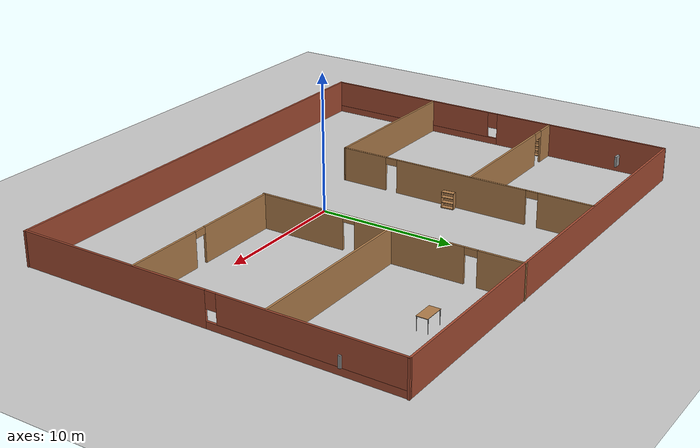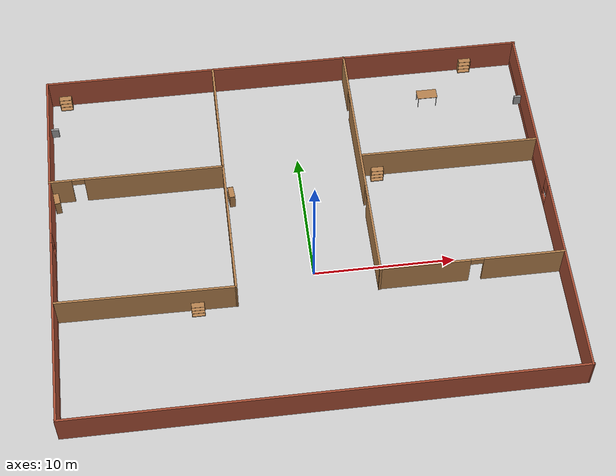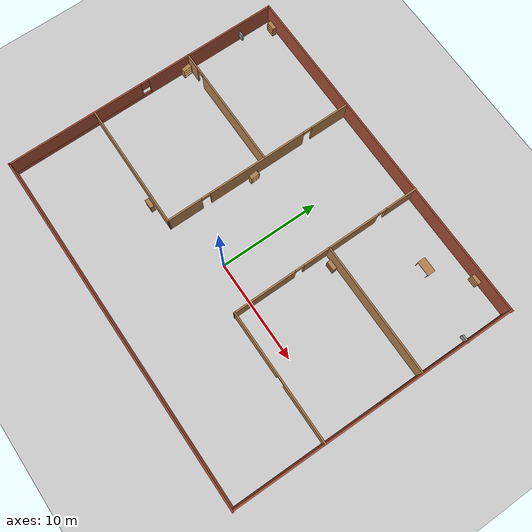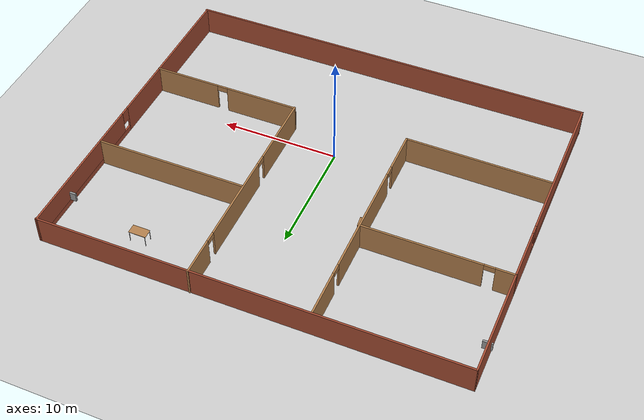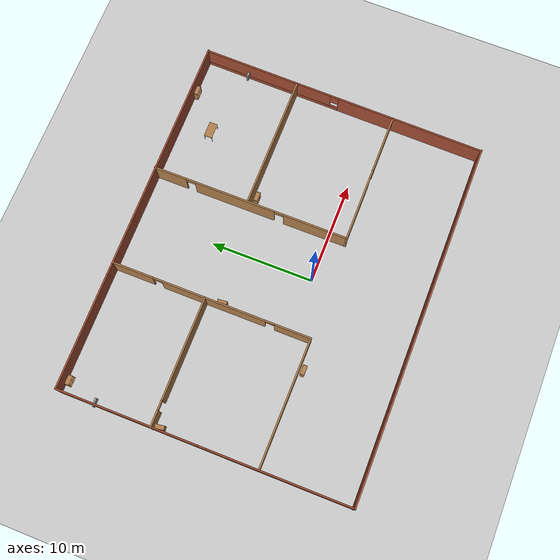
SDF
<sdf version="1.7">
 <world name="default">
  <light name="sun" type="directional">
   <pose>0 0 10 0 -0 0</pose>
   <diffuse>0.8 0.8 0.8 1</diffuse>
   <specular>0.2 0.2 0.2 1</specular>
   <attenuation>
    <range>1000</range>
    <constant>0.9</constant>
    <linear>0.01</linear>
    <quadratic>0.001</quadratic>
   </attenuation>
   <direction>-0.5 0.1 -0.9</direction>
   <spot><inner_angle>0</inner_angle><outer_angle>0</outer_angle><falloff>0</falloff></spot>
  </light>
  <model name="ground_plane">
   <static>1</static>
   <link name="link">
    <collision name="collision">
     <geometry><plane><normal>0 0 1</normal><size>100 100</size></plane></geometry>
     <surface><friction><ode><mu>100</mu><mu2>50</mu2></ode></friction></surface>
    </collision>
    <visual name="visual">
     <cast_shadows>0</cast_shadows>
     <geometry><plane><normal>0 0 1</normal><size>100 100</size></plane></geometry>
     <material>
      <script><uri>file://media/materials/scripts/gazebo.material</uri><name>Gazebo/Grey</name></script>
     </material>
    </visual>
   </link>
  </model>
  <gravity>0 0 -9.8</gravity>
  <magnetic_field>6e-06 2.3e-05 -4.2e-05</magnetic_field>
  <atmosphere type="adiabatic"/>
  <physics type="ode">
   <max_step_size>0.001</max_step_size>
   <real_time_factor>1</real_time_factor>
   <real_time_update_rate>1000</real_time_update_rate>
  </physics>
  <scene><ambient>0.4 0.4 0.4 1</ambient><background>0.7 0.7 0.7 1</background><shadows>1</shadows></scene>
  <audio><device>default</device></audio>
  <spherical_coordinates>
   <surface_model>EARTH_WGS84</surface_model>
   <latitude_deg>0</latitude_deg>
   <longitude_deg>0</longitude_deg>
   <elevation>0</elevation>
   <heading_deg>0</heading_deg>
  </spherical_coordinates>
  <model name="my_model">
   <pose>-0.243264 3.40238 0 0 -0 0</pose>
   <link name="Wall_11">
    <pose>11.0517 -5.12431 0 0 -0 0</pose>
    <visual name="Wall_11_Visual_0">
     <pose>-3.32425 0 1.25 0 -0 0</pose>
     <geometry><box><size>6.35149 0.15 2.5</size></box></geometry>
     <material>
      <script><uri>file://media/materials/scripts/gazebo.material</uri><name>Gazebo/Wood</name></script>
      <ambient>1 1 1 1</ambient>
     </material>
     <meta><layer>0</layer></meta>
    </visual>
    <collision name="Wall_11_Collision_0">
     <geometry><box><size>6.35149 0.15 2.5</size></box></geometry>
     <pose>-3.32425 0 1.25 0 -0 0</pose>
    </collision>
    <visual name="Wall_11_Visual_1">
     <pose>3.62575 0 1.25 0 -0 0</pose>
     <geometry><box><size>5.74851 0.15 2.5</size></box></geometry>
     <material>
      <script><uri>file://media/materials/scripts/gazebo.material</uri><name>Gazebo/Wood</name></script>
      <ambient>1 1 1 1</ambient>
     </material>
     <meta><layer>0</layer></meta>
    </visual>
    <collision name="Wall_11_Collision_1">
     <geometry><box><size>5.74851 0.15 2.5</size></box></geometry>
     <pose>3.62575 0 1.25 0 -0 0</pose>
    </collision>
    <visual name="Wall_11_Visual_2">
     <pose>0.301491 0 2.25 0 -0 0</pose>
     <geometry><box><size>0.9 0.15 0.5</size></box></geometry>
     <material>
      <script><uri>file://media/materials/scripts/gazebo.material</uri><name>Gazebo/Wood</name></script>
      <ambient>1 1 1 1</ambient>
     </material>
     <meta><layer>0</layer></meta>
    </visual>
    <collision name="Wall_11_Collision_2">
     <geometry><box><size>0.9 0.15 0.5</size></box></geometry>
     <pose>0.301491 0 2.25 0 -0 0</pose>
    </collision>
   </link>
   <link name="Wall_14">
    <pose>4.62669 4.46996 0 0 -0 1.5708</pose>
    <visual name="Wall_14_Visual_0">
     <pose>-6.53142 0 1.25 0 -0 0</pose>
     <geometry><box><size>6.3827 0.15 2.5</size></box></geometry>
     <material>
      <script><uri>file://media/materials/scripts/gazebo.material</uri><name>Gazebo/Wood</name></script>
      <ambient>1 1 1 1</ambient>
     </material>
     <meta><layer>0</layer></meta>
    </visual>
    <collision name="Wall_14_Collision_0">
     <geometry><box><size>6.3827 0.15 2.5</size></box></geometry>
     <pose>-6.53142 0 1.25 0 -0 0</pose>
    </collision>
    <visual name="Wall_14_Visual_1">
     <pose>1.55064 0 1.25 0 -0 0</pose>
     <geometry><box><size>7.98142 0.15 2.5</size></box></geometry>
     <material>
      <script><uri>file://media/materials/scripts/gazebo.material</uri><name>Gazebo/Wood</name></script>
      <ambient>1 1 1 1</ambient>
     </material>
     <meta><layer>0</layer></meta>
    </visual>
    <collision name="Wall_14_Collision_1">
     <geometry><box><size>7.98142 0.15 2.5</size></box></geometry>
     <pose>1.55064 0 1.25 0 -0 0</pose>
    </collision>
    <visual name="Wall_14_Visual_2">
     <pose>8.08206 0 1.25 0 -0 0</pose>
     <geometry><box><size>3.28142 0.15 2.5</size></box></geometry>
     <material>
      <script><uri>file://media/materials/scripts/gazebo.material</uri><name>Gazebo/Wood</name></script>
      <ambient>1 1 1 1</ambient>
     </material>
     <meta><layer>0</layer></meta>
    </visual>
    <collision name="Wall_14_Collision_2">
     <geometry><box><size>3.28142 0.15 2.5</size></box></geometry>
     <pose>8.08206 0 1.25 0 -0 0</pose>
    </collision>
    <visual name="Wall_14_Visual_3">
     <pose>-2.89007 0 2.25 0 -0 0</pose>
     <geometry><box><size>0.9 0.15 0.5</size></box></geometry>
     <material>
      <script><uri>file://media/materials/scripts/gazebo.material</uri><name>Gazebo/Wood</name></script>
      <ambient>1 1 1 1</ambient>
     </material>
     <meta><layer>0</layer></meta>
    </visual>
    <collision name="Wall_14_Collision_3">
     <geometry><box><size>0.9 0.15 0.5</size></box></geometry>
     <pose>-2.89007 0 2.25 0 -0 0</pose>
    </collision>
    <visual name="Wall_14_Visual_4">
     <pose>5.99134 0 2.25 0 -0 0</pose>
     <geometry><box><size>0.9 0.15 0.5</size></box></geometry>
     <material>
      <script><uri>file://media/materials/scripts/gazebo.material</uri><name>Gazebo/Wood</name></script>
      <ambient>1 1 1 1</ambient>
     </material>
     <meta><layer>0</layer></meta>
    </visual>
    <collision name="Wall_14_Collision_4">
     <geometry><box><size>0.9 0.15 0.5</size></box></geometry>
     <pose>5.99134 0 2.25 0 -0 0</pose>
    </collision>
   </link>
   <link name="Wall_16">
    <pose>-11.5772 4.89704 0 0 -0 0</pose>
    <visual name="Wall_16_Visual_0">
     <pose>-5.42095 0 1.25 0 -0 0</pose>
     <geometry><box><size>1.6581 0.15 2.5</size></box></geometry>
     <material>
      <script><uri>file://media/materials/scripts/gazebo.material</uri><name>Gazebo/Wood</name></script>
      <ambient>1 1 1 1</ambient>
     </material>
     <meta><layer>0</layer></meta>
    </visual>
    <collision name="Wall_16_Collision_0">
     <geometry><box><size>1.6581 0.15 2.5</size></box></geometry>
     <pose>-5.42095 0 1.25 0 -0 0</pose>
    </collision>
    <visual name="Wall_16_Visual_1">
     <pose>1.27905 0 1.25 0 -0 0</pose>
     <geometry><box><size>9.94191 0.15 2.5</size></box></geometry>
     <material>
      <script><uri>file://media/materials/scripts/gazebo.material</uri><name>Gazebo/Wood</name></script>
      <ambient>1 1 1 1</ambient>
     </material>
     <meta><layer>0</layer></meta>
    </visual>
    <collision name="Wall_16_Collision_1">
     <geometry><box><size>9.94191 0.15 2.5</size></box></geometry>
     <pose>1.27905 0 1.25 0 -0 0</pose>
    </collision>
    <visual name="Wall_16_Visual_2">
     <pose>-4.14191 0 2.25 0 -0 0</pose>
     <geometry><box><size>0.9 0.15 0.5</size></box></geometry>
     <material>
      <script><uri>file://media/materials/scripts/gazebo.material</uri><name>Gazebo/Wood</name></script>
      <ambient>1 1 1 1</ambient>
     </material>
     <meta><layer>0</layer></meta>
    </visual>
    <collision name="Wall_16_Collision_2">
     <geometry><box><size>0.9 0.15 0.5</size></box></geometry>
     <pose>-4.14191 0 2.25 0 -0 0</pose>
    </collision>
   </link>
   <link name="Wall_18">
    <collision name="Wall_18_Collision">
     <geometry><box><size>13 0.15 2.5</size></box></geometry>
     <pose>0 0 1.25 0 -0 0</pose>
    </collision>
    <visual name="Wall_18_Visual">
     <pose>0 0 1.25 0 -0 0</pose>
     <geometry><box><size>13 0.15 2.5</size></box></geometry>
     <material>
      <script><uri>file://media/materials/scripts/gazebo.material</uri><name>Gazebo/Wood</name></script>
      <ambient>1 1 1 1</ambient>
     </material>
     <meta><layer>0</layer></meta>
    </visual>
    <pose>11.0904 4.73653 0 0 -0 0</pose>
   </link>
   <link name="Wall_2">
    <collision name="Wall_2_Collision">
     <geometry><box><size>35.3453 0.15 2.5</size></box></geometry>
     <pose>0 0 1.25 0 -0 0</pose>
    </collision>
    <visual name="Wall_2_Visual">
     <pose>0 0 1.25 0 -0 0</pose>
     <geometry><box><size>35.3453 0.15 2.5</size></box></geometry>
     <material>
      <script><uri>file://media/materials/scripts/gazebo.material</uri><name>Gazebo/Bricks</name></script>
      <ambient>1 1 1 1</ambient>
     </material>
     <meta><layer>0</layer></meta>
    </visual>
    <pose>-0.160507 -14.0909 0 0 -0 0.00152</pose>
   </link>
   <link name="Wall_3">
    <pose>17.5441 0.012643 0 0 -0 1.55939</pose>
    <visual name="Wall_3_Visual_0">
     <pose>-6.86656 0 1.25 0 -0 0</pose>
     <geometry><box><size>14.5722 0.15 2.5</size></box></geometry>
     <material>
      <script><uri>file://media/materials/scripts/gazebo.material</uri><name>Gazebo/Bricks</name></script>
      <ambient>1 1 1 1</ambient>
     </material>
     <meta><layer>0</layer></meta>
    </visual>
    <collision name="Wall_3_Collision_0">
     <geometry><box><size>14.5722 0.15 2.5</size></box></geometry>
     <pose>-6.86656 0 1.25 0 -0 0</pose>
    </collision>
    <visual name="Wall_3_Visual_1">
     <pose>7.28611 0 0.25 0 -0 0</pose>
     <geometry><box><size>13.7331 0.15 0.5</size></box></geometry>
     <material>
      <script><uri>file://media/materials/scripts/gazebo.material</uri><name>Gazebo/Bricks</name></script>
      <ambient>1 1 1 1</ambient>
     </material>
     <meta><layer>0</layer></meta>
    </visual>
    <collision name="Wall_3_Collision_1">
     <geometry><box><size>13.7331 0.15 0.5</size></box></geometry>
     <pose>7.28611 0 0.25 0 -0 0</pose>
    </collision>
    <visual name="Wall_3_Visual_2">
     <pose>7.68611 0 1.5 0 -0 0</pose>
     <geometry><box><size>12.9331 0.15 2</size></box></geometry>
     <material>
      <script><uri>file://media/materials/scripts/gazebo.material</uri><name>Gazebo/Bricks</name></script>
      <ambient>1 1 1 1</ambient>
     </material>
     <meta><layer>0</layer></meta>
    </visual>
    <collision name="Wall_3_Collision_2">
     <geometry><box><size>12.9331 0.15 2</size></box></geometry>
     <pose>7.68611 0 1.5 0 -0 0</pose>
    </collision>
    <visual name="Wall_3_Visual_3">
     <pose>0.81955 0 1.9 0 -0 0</pose>
     <geometry><box><size>0.8 0.15 1.2</size></box></geometry>
     <material>
      <script><uri>file://media/materials/scripts/gazebo.material</uri><name>Gazebo/Bricks</name></script>
      <ambient>1 1 1 1</ambient>
     </material>
     <meta><layer>0</layer></meta>
    </visual>
    <collision name="Wall_3_Collision_3">
     <geometry><box><size>0.8 0.15 1.2</size></box></geometry>
     <pose>0.81955 0 1.9 0 -0 0</pose>
    </collision>
   </link>
   <link name="Wall_4">
    <collision name="Wall_4_Collision">
     <geometry><box><size>35.6488 0.15 2.5</size></box></geometry>
     <pose>0 0 1.25 0 -0 0</pose>
    </collision>
    <visual name="Wall_4_Visual">
     <pose>0 0 1.25 0 -0 0</pose>
     <geometry><box><size>35.6488 0.15 2.5</size></box></geometry>
     <material>
      <script><uri>file://media/materials/scripts/gazebo.material</uri><name>Gazebo/Bricks</name></script>
      <ambient>1 1 1 1</ambient>
     </material>
     <meta><layer>0</layer></meta>
    </visual>
    <pose>0.008757 14.0626 0 0 -0 -3.14009</pose>
   </link>
   <link name="Wall_5">
    <pose>-17.7406 -0.014108 0 0 -0 -1.5708</pose>
    <visual name="Wall_5_Visual_0">
     <pose>-7.31046 0 1.25 0 -0 0</pose>
     <geometry><box><size>13.6291 0.15 2.5</size></box></geometry>
     <material>
      <script><uri>file://media/materials/scripts/gazebo.material</uri><name>Gazebo/Bricks</name></script>
      <ambient>1 1 1 1</ambient>
     </material>
     <meta><layer>0</layer></meta>
    </visual>
    <collision name="Wall_5_Collision_0">
     <geometry><box><size>13.6291 0.15 2.5</size></box></geometry>
     <pose>-7.31046 0 1.25 0 -0 0</pose>
    </collision>
    <visual name="Wall_5_Visual_1">
     <pose>6.81454 0 0.25 0 -0 0</pose>
     <geometry><box><size>14.6209 0.15 0.5</size></box></geometry>
     <material>
      <script><uri>file://media/materials/scripts/gazebo.material</uri><name>Gazebo/Bricks</name></script>
      <ambient>1 1 1 1</ambient>
     </material>
     <meta><layer>0</layer></meta>
    </visual>
    <collision name="Wall_5_Collision_1">
     <geometry><box><size>14.6209 0.15 0.5</size></box></geometry>
     <pose>6.81454 0 0.25 0 -0 0</pose>
    </collision>
    <visual name="Wall_5_Visual_2">
     <pose>7.21454 0 1.5 0 -0 0</pose>
     <geometry><box><size>13.8209 0.15 2</size></box></geometry>
     <material>
      <script><uri>file://media/materials/scripts/gazebo.material</uri><name>Gazebo/Bricks</name></script>
      <ambient>1 1 1 1</ambient>
     </material>
     <meta><layer>0</layer></meta>
    </visual>
    <collision name="Wall_5_Collision_2">
     <geometry><box><size>13.8209 0.15 2</size></box></geometry>
     <pose>7.21454 0 1.5 0 -0 0</pose>
    </collision>
    <visual name="Wall_5_Visual_3">
     <pose>-0.095924 0 1.9 0 -0 0</pose>
     <geometry><box><size>0.8 0.15 1.2</size></box></geometry>
     <material>
      <script><uri>file://media/materials/scripts/gazebo.material</uri><name>Gazebo/Bricks</name></script>
      <ambient>1 1 1 1</ambient>
     </material>
     <meta><layer>0</layer></meta>
    </visual>
    <collision name="Wall_5_Collision_3">
     <geometry><box><size>0.8 0.15 1.2</size></box></geometry>
     <pose>-0.095924 0 1.9 0 -0 0</pose>
    </collision>
   </link>
   <link name="Wall_7">
    <pose>-5.32478 4.30109 0 0 -0 -1.5708</pose>
    <visual name="Wall_7_Visual_0">
     <pose>-7.75209 0 1.25 0 -0 0</pose>
     <geometry><box><size>3.99582 0.15 2.5</size></box></geometry>
     <material>
      <script><uri>file://media/materials/scripts/gazebo.material</uri><name>Gazebo/Wood</name></script>
      <ambient>1 1 1 1</ambient>
     </material>
     <meta><layer>0</layer></meta>
    </visual>
    <collision name="Wall_7_Collision_0">
     <geometry><box><size>3.99582 0.15 2.5</size></box></geometry>
     <pose>-7.75209 0 1.25 0 -0 0</pose>
    </collision>
    <visual name="Wall_7_Visual_1">
     <pose>0.206583 0 1.25 0 -0 0</pose>
     <geometry><box><size>10.1215 0.15 2.5</size></box></geometry>
     <material>
      <script><uri>file://media/materials/scripts/gazebo.material</uri><name>Gazebo/Wood</name></script>
      <ambient>1 1 1 1</ambient>
     </material>
     <meta><layer>0</layer></meta>
    </visual>
    <collision name="Wall_7_Collision_1">
     <geometry><box><size>10.1215 0.15 2.5</size></box></geometry>
     <pose>0.206583 0 1.25 0 -0 0</pose>
    </collision>
    <visual name="Wall_7_Visual_2">
     <pose>7.95867 0 1.25 0 -0 0</pose>
     <geometry><box><size>3.58266 0.15 2.5</size></box></geometry>
     <material>
      <script><uri>file://media/materials/scripts/gazebo.material</uri><name>Gazebo/Wood</name></script>
      <ambient>1 1 1 1</ambient>
     </material>
     <meta><layer>0</layer></meta>
    </visual>
    <collision name="Wall_7_Collision_2">
     <geometry><box><size>3.58266 0.15 2.5</size></box></geometry>
     <pose>7.95867 0 1.25 0 -0 0</pose>
    </collision>
    <visual name="Wall_7_Visual_3">
     <pose>-5.30417 0 2.25 0 -0 0</pose>
     <geometry><box><size>0.9 0.15 0.5</size></box></geometry>
     <material>
      <script><uri>file://media/materials/scripts/gazebo.material</uri><name>Gazebo/Wood</name></script>
      <ambient>1 1 1 1</ambient>
     </material>
     <meta><layer>0</layer></meta>
    </visual>
    <collision name="Wall_7_Collision_3">
     <geometry><box><size>0.9 0.15 0.5</size></box></geometry>
     <pose>-5.30417 0 2.25 0 -0 0</pose>
    </collision>
    <visual name="Wall_7_Visual_4">
     <pose>5.71734 0 2.25 0 -0 0</pose>
     <geometry><box><size>0.9 0.15 0.5</size></box></geometry>
     <material>
      <script><uri>file://media/materials/scripts/gazebo.material</uri><name>Gazebo/Wood</name></script>
      <ambient>1 1 1 1</ambient>
     </material>
     <meta><layer>0</layer></meta>
    </visual>
    <collision name="Wall_7_Collision_4">
     <geometry><box><size>0.9 0.15 0.5</size></box></geometry>
     <pose>5.71734 0 2.25 0 -0 0</pose>
    </collision>
   </link>
   <link name="Wall_8">
    <collision name="Wall_8_Collision">
     <geometry><box><size>12.447 0.15 2.5</size></box></geometry>
     <pose>0 0 1.25 0 -0 0</pose>
    </collision>
    <visual name="Wall_8_Visual">
     <pose>0 0 1.25 0 -0 0</pose>
     <geometry><box><size>12.447 0.15 2.5</size></box></geometry>
     <material>
      <script><uri>file://media/materials/scripts/gazebo.material</uri><name>Gazebo/Wood</name></script>
      <ambient>1 1 1 1</ambient>
     </material>
     <meta><layer>0</layer></meta>
    </visual>
    <pose>-11.473 -5.32041 0 0 -0 3.13289</pose>
   </link>
   <link name="Window_0">
    <collision name="Window_0_Collision">
     <geometry><box><size>0.8 0.17 0.8</size></box></geometry>
     <pose>0 0 0.4 0 -0 0</pose>
    </collision>
    <visual name="Window_0_Visual">
     <pose>0 0 0.4 0 -0 0</pose>
     <geometry><box><size>0.8 0.17 0.8</size></box></geometry>
     <material>
      <script><uri>file://media/materials/scripts/gazebo.material</uri><name>Gazebo/Grey</name></script>
     </material>
    </visual>
    <pose>-17.5382 10.6218 0.5 0 -0 0</pose>
   </link>
   <link name="Window_2">
    <collision name="Window_2_Collision">
     <geometry><box><size>0.8 0.17 0.8</size></box></geometry>
     <pose>0 0 0.4 0 -0 0</pose>
    </collision>
    <visual name="Window_2_Visual">
     <pose>0 0 0.4 0 -0 0</pose>
     <geometry><box><size>0.8 0.17 0.8</size></box></geometry>
     <material>
      <script><uri>file://media/materials/scripts/gazebo.material</uri><name>Gazebo/Grey</name></script>
     </material>
    </visual>
    <pose>17.4525 9.76577 0.5 0 -0 0</pose>
   </link>
   <static>1</static>
  </model>
  <model name="table">
   <static>1</static>
   <link name="link">
    <collision name="surface">
     <pose>0 0 1 0 -0 0</pose>
     <geometry><box><size>1.5 0.8 0.03</size></box></geometry>
     <surface><friction><ode><mu>0.6</mu><mu2>0.6</mu2></ode></friction></surface>
    </collision>
    <visual name="visual1">
     <pose>0 0 1 0 -0 0</pose>
     <geometry><box><size>1.5 0.8 0.03</size></box></geometry>
     <material>
      <script><uri>file://media/materials/scripts/gazebo.material</uri><name>Gazebo/Wood</name></script>
     </material>
    </visual>
    <collision name="front_left_leg">
     <pose>0.68 0.38 0.5 0 -0 0</pose>
     <geometry><cylinder><radius>0.02</radius><length>1</length></cylinder></geometry>
    </collision>
    <visual name="front_left_leg">
     <pose>0.68 0.38 0.5 0 -0 0</pose>
     <geometry><cylinder><radius>0.02</radius><length>1</length></cylinder></geometry>
     <material>
      <script><uri>file://media/materials/scripts/gazebo.material</uri><name>Gazebo/Grey</name></script>
     </material>
    </visual>
    <collision name="front_right_leg">
     <pose>0.68 -0.38 0.5 0 -0 0</pose>
     <geometry><cylinder><radius>0.02</radius><length>1</length></cylinder></geometry>
    </collision>
    <visual name="front_right_leg">
     <pose>0.68 -0.38 0.5 0 -0 0</pose>
     <geometry><cylinder><radius>0.02</radius><length>1</length></cylinder></geometry>
     <material>
      <script><uri>file://media/materials/scripts/gazebo.material</uri><name>Gazebo/Grey</name></script>
     </material>
    </visual>
    <collision name="back_right_leg">
     <pose>-0.68 -0.38 0.5 0 -0 0</pose>
     <geometry><cylinder><radius>0.02</radius><length>1</length></cylinder></geometry>
    </collision>
    <visual name="back_right_leg">
     <pose>-0.68 -0.38 0.5 0 -0 0</pose>
     <geometry><cylinder><radius>0.02</radius><length>1</length></cylinder></geometry>
     <material>
      <script><uri>file://media/materials/scripts/gazebo.material</uri><name>Gazebo/Grey</name></script>
     </material>
    </visual>
    <collision name="back_left_leg">
     <pose>-0.68 0.38 0.5 0 -0 0</pose>
     <geometry><cylinder><radius>0.02</radius><length>1</length></cylinder></geometry>
    </collision>
    <visual name="back_left_leg">
     <pose>-0.68 0.38 0.5 0 -0 0</pose>
     <geometry><cylinder><radius>0.02</radius><length>1</length></cylinder></geometry>
     <material>
      <script><uri>file://media/materials/scripts/gazebo.material</uri><name>Gazebo/Grey</name></script>
     </material>
    </visual>
   </link>
   <pose>10.3699 14.4237 0 0 -0 0</pose>
  </model>
  <model name="bookshelf">
   <static>1</static>
   <link name="link">
    <inertial><mass>1</mass></inertial>
    <collision name="back">
     <pose>0 0.005 0.6 0 -0 0</pose>
     <geometry><box><size>0.9 0.01 1.2</size></box></geometry>
    </collision>
    <visual name="visual1">
     <pose>0 0.005 0.6 0 -0 0</pose>
     <geometry><box><size>0.9 0.01 1.2</size></box></geometry>
     <material>
      <script><uri>file://media/materials/scripts/gazebo.material</uri><name>Gazebo/Wood</name></script>
     </material>
    </visual>
    <collision name="left_side">
     <pose>0.45 -0.195 0.6 0 -0 0</pose>
     <geometry><box><size>0.02 0.4 1.2</size></box></geometry>
    </collision>
    <visual name="visual2">
     <pose>0.45 -0.195 0.6 0 -0 0</pose>
     <geometry><box><size>0.02 0.4 1.2</size></box></geometry>
     <material>
      <script><uri>file://media/materials/scripts/gazebo.material</uri><name>Gazebo/Wood</name></script>
     </material>
    </visual>
    <collision name="right_side">
     <pose>-0.45 -0.195 0.6 0 -0 0</pose>
     <geometry><box><size>0.02 0.4 1.2</size></box></geometry>
    </collision>
    <visual name="visual3">
     <pose>-0.45 -0.195 0.6 0 -0 0</pose>
     <geometry><box><size>0.02 0.4 1.2</size></box></geometry>
     <material>
      <script><uri>file://media/materials/scripts/gazebo.material</uri><name>Gazebo/Wood</name></script>
     </material>
    </visual>
    <collision name="bottom">
     <pose>0 -0.195 0.03 0 -0 0</pose>
     <geometry><box><size>0.88 0.4 0.06</size></box></geometry>
    </collision>
    <visual name="visual4">
     <pose>0 -0.195 0.03 0 -0 0</pose>
     <geometry><box><size>0.88 0.4 0.06</size></box></geometry>
     <material>
      <script><uri>file://media/materials/scripts/gazebo.material</uri><name>Gazebo/Wood</name></script>
     </material>
    </visual>
    <collision name="top">
     <pose>0 -0.195 1.19 0 -0 0</pose>
     <geometry><box><size>0.88 0.4 0.02</size></box></geometry>
    </collision>
    <visual name="visual5">
     <pose>0 -0.195 1.19 0 -0 0</pose>
     <geometry><box><size>0.88 0.4 0.02</size></box></geometry>
     <material>
      <script><uri>file://media/materials/scripts/gazebo.material</uri><name>Gazebo/Wood</name></script>
     </material>
    </visual>
    <collision name="low_shelf">
     <pose>0 -0.195 0.43 0 -0 0</pose>
     <geometry><box><size>0.88 0.4 0.02</size></box></geometry>
    </collision>
    <visual name="visual6">
     <pose>0 -0.195 0.43 0 -0 0</pose>
     <geometry><box><size>0.88 0.4 0.02</size></box></geometry>
     <material>
      <script><uri>file://media/materials/scripts/gazebo.material</uri><name>Gazebo/Wood</name></script>
     </material>
    </visual>
    <collision name="high_shelf">
     <pose>0 -0.195 0.8 0 -0 0</pose>
     <geometry><box><size>0.88 0.4 0.02</size></box></geometry>
    </collision>
    <visual name="visual7">
     <pose>0 -0.195 0.8 0 -0 0</pose>
     <geometry><box><size>0.88 0.4 0.02</size></box></geometry>
     <material>
      <script><uri>file://media/materials/scripts/gazebo.material</uri><name>Gazebo/Wood</name></script>
     </material>
    </visual>
   </link>
   <pose>5.58552 7.88508 0 0 -0 0</pose>
  </model>
  <model name="bookshelf_0">
   <static>1</static>
   <link name="link">
    <inertial><mass>1</mass></inertial>
    <collision name="back">
     <pose>0 0.005 0.6 0 -0 0</pose>
     <geometry><box><size>0.9 0.01 1.2</size></box></geometry>
    </collision>
    <visual name="visual1">
     <pose>0 0.005 0.6 0 -0 0</pose>
     <geometry><box><size>0.9 0.01 1.2</size></box></geometry>
     <material>
      <script><uri>file://media/materials/scripts/gazebo.material</uri><name>Gazebo/Wood</name></script>
     </material>
    </visual>
    <collision name="left_side">
     <pose>0.45 -0.195 0.6 0 -0 0</pose>
     <geometry><box><size>0.02 0.4 1.2</size></box></geometry>
    </collision>
    <visual name="visual2">
     <pose>0.45 -0.195 0.6 0 -0 0</pose>
     <geometry><box><size>0.02 0.4 1.2</size></box></geometry>
     <material>
      <script><uri>file://media/materials/scripts/gazebo.material</uri><name>Gazebo/Wood</name></script>
     </material>
    </visual>
    <collision name="right_side">
     <pose>-0.45 -0.195 0.6 0 -0 0</pose>
     <geometry><box><size>0.02 0.4 1.2</size></box></geometry>
    </collision>
    <visual name="visual3">
     <pose>-0.45 -0.195 0.6 0 -0 0</pose>
     <geometry><box><size>0.02 0.4 1.2</size></box></geometry>
     <material>
      <script><uri>file://media/materials/scripts/gazebo.material</uri><name>Gazebo/Wood</name></script>
     </material>
    </visual>
    <collision name="bottom">
     <pose>0 -0.195 0.03 0 -0 0</pose>
     <geometry><box><size>0.88 0.4 0.06</size></box></geometry>
    </collision>
    <visual name="visual4">
     <pose>0 -0.195 0.03 0 -0 0</pose>
     <geometry><box><size>0.88 0.4 0.06</size></box></geometry>
     <material>
      <script><uri>file://media/materials/scripts/gazebo.material</uri><name>Gazebo/Wood</name></script>
     </material>
    </visual>
    <collision name="top">
     <pose>0 -0.195 1.19 0 -0 0</pose>
     <geometry><box><size>0.88 0.4 0.02</size></box></geometry>
    </collision>
    <visual name="visual5">
     <pose>0 -0.195 1.19 0 -0 0</pose>
     <geometry><box><size>0.88 0.4 0.02</size></box></geometry>
     <material>
      <script><uri>file://media/materials/scripts/gazebo.material</uri><name>Gazebo/Wood</name></script>
     </material>
    </visual>
    <collision name="low_shelf">
     <pose>0 -0.195 0.43 0 -0 0</pose>
     <geometry><box><size>0.88 0.4 0.02</size></box></geometry>
    </collision>
    <visual name="visual6">
     <pose>0 -0.195 0.43 0 -0 0</pose>
     <geometry><box><size>0.88 0.4 0.02</size></box></geometry>
     <material>
      <script><uri>file://media/materials/scripts/gazebo.material</uri><name>Gazebo/Wood</name></script>
     </material>
    </visual>
    <collision name="high_shelf">
     <pose>0 -0.195 0.8 0 -0 0</pose>
     <geometry><box><size>0.88 0.4 0.02</size></box></geometry>
    </collision>
    <visual name="visual7">
     <pose>0 -0.195 0.8 0 -0 0</pose>
     <geometry><box><size>0.88 0.4 0.02</size></box></geometry>
     <material>
      <script><uri>file://media/materials/scripts/gazebo.material</uri><name>Gazebo/Wood</name></script>
     </material>
    </visual>
   </link>
   <pose>-17.8574 7.72753 0 0 -0 1.70945</pose>
  </model>
  <model name="bookshelf_1">
   <static>1</static>
   <link name="link">
    <inertial><mass>1</mass></inertial>
    <collision name="back">
     <pose>0 0.005 0.6 0 -0 0</pose>
     <geometry><box><size>0.9 0.01 1.2</size></box></geometry>
    </collision>
    <visual name="visual1">
     <pose>0 0.005 0.6 0 -0 0</pose>
     <geometry><box><size>0.9 0.01 1.2</size></box></geometry>
     <material>
      <script><uri>file://media/materials/scripts/gazebo.material</uri><name>Gazebo/Wood</name></script>
     </material>
    </visual>
    <collision name="left_side">
     <pose>0.45 -0.195 0.6 0 -0 0</pose>
     <geometry><box><size>0.02 0.4 1.2</size></box></geometry>
    </collision>
    <visual name="visual2">
     <pose>0.45 -0.195 0.6 0 -0 0</pose>
     <geometry><box><size>0.02 0.4 1.2</size></box></geometry>
     <material>
      <script><uri>file://media/materials/scripts/gazebo.material</uri><name>Gazebo/Wood</name></script>
     </material>
    </visual>
    <collision name="right_side">
     <pose>-0.45 -0.195 0.6 0 -0 0</pose>
     <geometry><box><size>0.02 0.4 1.2</size></box></geometry>
    </collision>
    <visual name="visual3">
     <pose>-0.45 -0.195 0.6 0 -0 0</pose>
     <geometry><box><size>0.02 0.4 1.2</size></box></geometry>
     <material>
      <script><uri>file://media/materials/scripts/gazebo.material</uri><name>Gazebo/Wood</name></script>
     </material>
    </visual>
    <collision name="bottom">
     <pose>0 -0.195 0.03 0 -0 0</pose>
     <geometry><box><size>0.88 0.4 0.06</size></box></geometry>
    </collision>
    <visual name="visual4">
     <pose>0 -0.195 0.03 0 -0 0</pose>
     <geometry><box><size>0.88 0.4 0.06</size></box></geometry>
     <material>
      <script><uri>file://media/materials/scripts/gazebo.material</uri><name>Gazebo/Wood</name></script>
     </material>
    </visual>
    <collision name="top">
     <pose>0 -0.195 1.19 0 -0 0</pose>
     <geometry><box><size>0.88 0.4 0.02</size></box></geometry>
    </collision>
    <visual name="visual5">
     <pose>0 -0.195 1.19 0 -0 0</pose>
     <geometry><box><size>0.88 0.4 0.02</size></box></geometry>
     <material>
      <script><uri>file://media/materials/scripts/gazebo.material</uri><name>Gazebo/Wood</name></script>
     </material>
    </visual>
    <collision name="low_shelf">
     <pose>0 -0.195 0.43 0 -0 0</pose>
     <geometry><box><size>0.88 0.4 0.02</size></box></geometry>
    </collision>
    <visual name="visual6">
     <pose>0 -0.195 0.43 0 -0 0</pose>
     <geometry><box><size>0.88 0.4 0.02</size></box></geometry>
     <material>
      <script><uri>file://media/materials/scripts/gazebo.material</uri><name>Gazebo/Wood</name></script>
     </material>
    </visual>
    <collision name="high_shelf">
     <pose>0 -0.195 0.8 0 -0 0</pose>
     <geometry><box><size>0.88 0.4 0.02</size></box></geometry>
    </collision>
    <visual name="visual7">
     <pose>0 -0.195 0.8 0 -0 0</pose>
     <geometry><box><size>0.88 0.4 0.02</size></box></geometry>
     <material>
      <script><uri>file://media/materials/scripts/gazebo.material</uri><name>Gazebo/Wood</name></script>
     </material>
    </visual>
   </link>
   <pose>-16.8037 17.2154 0 0 -0 0</pose>
  </model>
  <model name="bookshelf_2">
   <static>1</static>
   <link name="link">
    <inertial><mass>1</mass></inertial>
    <collision name="back">
     <pose>0 0.005 0.6 0 -0 0</pose>
     <geometry><box><size>0.9 0.01 1.2</size></box></geometry>
    </collision>
    <visual name="visual1">
     <pose>0 0.005 0.6 0 -0 0</pose>
     <geometry><box><size>0.9 0.01 1.2</size></box></geometry>
     <material>
      <script><uri>file://media/materials/scripts/gazebo.material</uri><name>Gazebo/Wood</name></script>
     </material>
    </visual>
    <collision name="left_side">
     <pose>0.45 -0.195 0.6 0 -0 0</pose>
     <geometry><box><size>0.02 0.4 1.2</size></box></geometry>
    </collision>
    <visual name="visual2">
     <pose>0.45 -0.195 0.6 0 -0 0</pose>
     <geometry><box><size>0.02 0.4 1.2</size></box></geometry>
     <material>
      <script><uri>file://media/materials/scripts/gazebo.material</uri><name>Gazebo/Wood</name></script>
     </material>
    </visual>
    <collision name="right_side">
     <pose>-0.45 -0.195 0.6 0 -0 0</pose>
     <geometry><box><size>0.02 0.4 1.2</size></box></geometry>
    </collision>
    <visual name="visual3">
     <pose>-0.45 -0.195 0.6 0 -0 0</pose>
     <geometry><box><size>0.02 0.4 1.2</size></box></geometry>
     <material>
      <script><uri>file://media/materials/scripts/gazebo.material</uri><name>Gazebo/Wood</name></script>
     </material>
    </visual>
    <collision name="bottom">
     <pose>0 -0.195 0.03 0 -0 0</pose>
     <geometry><box><size>0.88 0.4 0.06</size></box></geometry>
    </collision>
    <visual name="visual4">
     <pose>0 -0.195 0.03 0 -0 0</pose>
     <geometry><box><size>0.88 0.4 0.06</size></box></geometry>
     <material>
      <script><uri>file://media/materials/scripts/gazebo.material</uri><name>Gazebo/Wood</name></script>
     </material>
    </visual>
    <collision name="top">
     <pose>0 -0.195 1.19 0 -0 0</pose>
     <geometry><box><size>0.88 0.4 0.02</size></box></geometry>
    </collision>
    <visual name="visual5">
     <pose>0 -0.195 1.19 0 -0 0</pose>
     <geometry><box><size>0.88 0.4 0.02</size></box></geometry>
     <material>
      <script><uri>file://media/materials/scripts/gazebo.material</uri><name>Gazebo/Wood</name></script>
     </material>
    </visual>
    <collision name="low_shelf">
     <pose>0 -0.195 0.43 0 -0 0</pose>
     <geometry><box><size>0.88 0.4 0.02</size></box></geometry>
    </collision>
    <visual name="visual6">
     <pose>0 -0.195 0.43 0 -0 0</pose>
     <geometry><box><size>0.88 0.4 0.02</size></box></geometry>
     <material>
      <script><uri>file://media/materials/scripts/gazebo.material</uri><name>Gazebo/Wood</name></script>
     </material>
    </visual>
    <collision name="high_shelf">
     <pose>0 -0.195 0.8 0 -0 0</pose>
     <geometry><box><size>0.88 0.4 0.02</size></box></geometry>
    </collision>
    <visual name="visual7">
     <pose>0 -0.195 0.8 0 -0 0</pose>
     <geometry><box><size>0.88 0.4 0.02</size></box></geometry>
     <material>
      <script><uri>file://media/materials/scripts/gazebo.material</uri><name>Gazebo/Wood</name></script>
     </material>
    </visual>
   </link>
   <pose>13.7503 17.4465 0 0 -0 0</pose>
  </model>
  <model name="bookshelf_3">
   <static>1</static>
   <link name="link">
    <inertial><mass>1</mass></inertial>
    <collision name="back">
     <pose>0 0.005 0.6 0 -0 0</pose>
     <geometry><box><size>0.9 0.01 1.2</size></box></geometry>
    </collision>
    <visual name="visual1">
     <pose>0 0.005 0.6 0 -0 0</pose>
     <geometry><box><size>0.9 0.01 1.2</size></box></geometry>
     <material>
      <script><uri>file://media/materials/scripts/gazebo.material</uri><name>Gazebo/Wood</name></script>
     </material>
    </visual>
    <collision name="left_side">
     <pose>0.45 -0.195 0.6 0 -0 0</pose>
     <geometry><box><size>0.02 0.4 1.2</size></box></geometry>
    </collision>
    <visual name="visual2">
     <pose>0.45 -0.195 0.6 0 -0 0</pose>
     <geometry><box><size>0.02 0.4 1.2</size></box></geometry>
     <material>
      <script><uri>file://media/materials/scripts/gazebo.material</uri><name>Gazebo/Wood</name></script>
     </material>
    </visual>
    <collision name="right_side">
     <pose>-0.45 -0.195 0.6 0 -0 0</pose>
     <geometry><box><size>0.02 0.4 1.2</size></box></geometry>
    </collision>
    <visual name="visual3">
     <pose>-0.45 -0.195 0.6 0 -0 0</pose>
     <geometry><box><size>0.02 0.4 1.2</size></box></geometry>
     <material>
      <script><uri>file://media/materials/scripts/gazebo.material</uri><name>Gazebo/Wood</name></script>
     </material>
    </visual>
    <collision name="bottom">
     <pose>0 -0.195 0.03 0 -0 0</pose>
     <geometry><box><size>0.88 0.4 0.06</size></box></geometry>
    </collision>
    <visual name="visual4">
     <pose>0 -0.195 0.03 0 -0 0</pose>
     <geometry><box><size>0.88 0.4 0.06</size></box></geometry>
     <material>
      <script><uri>file://media/materials/scripts/gazebo.material</uri><name>Gazebo/Wood</name></script>
     </material>
    </visual>
    <collision name="top">
     <pose>0 -0.195 1.19 0 -0 0</pose>
     <geometry><box><size>0.88 0.4 0.02</size></box></geometry>
    </collision>
    <visual name="visual5">
     <pose>0 -0.195 1.19 0 -0 0</pose>
     <geometry><box><size>0.88 0.4 0.02</size></box></geometry>
     <material>
      <script><uri>file://media/materials/scripts/gazebo.material</uri><name>Gazebo/Wood</name></script>
     </material>
    </visual>
    <collision name="low_shelf">
     <pose>0 -0.195 0.43 0 -0 0</pose>
     <geometry><box><size>0.88 0.4 0.02</size></box></geometry>
    </collision>
    <visual name="visual6">
     <pose>0 -0.195 0.43 0 -0 0</pose>
     <geometry><box><size>0.88 0.4 0.02</size></box></geometry>
     <material>
      <script><uri>file://media/materials/scripts/gazebo.material</uri><name>Gazebo/Wood</name></script>
     </material>
    </visual>
    <collision name="high_shelf">
     <pose>0 -0.195 0.8 0 -0 0</pose>
     <geometry><box><size>0.88 0.4 0.02</size></box></geometry>
    </collision>
    <visual name="visual7">
     <pose>0 -0.195 0.8 0 -0 0</pose>
     <geometry><box><size>0.88 0.4 0.02</size></box></geometry>
     <material>
      <script><uri>file://media/materials/scripts/gazebo.material</uri><name>Gazebo/Wood</name></script>
     </material>
    </visual>
   </link>
   <pose>-8.27854 -2.15504 0 0 -0 0</pose>
  </model>
  <model name="bookshelf_4">
   <static>1</static>
   <link name="link">
    <inertial><mass>1</mass></inertial>
    <collision name="back">
     <pose>0 0.005 0.6 0 -0 0</pose>
     <geometry><box><size>0.9 0.01 1.2</size></box></geometry>
    </collision>
    <visual name="visual1">
     <pose>0 0.005 0.6 0 -0 0</pose>
     <geometry><box><size>0.9 0.01 1.2</size></box></geometry>
     <material>
      <script><uri>file://media/materials/scripts/gazebo.material</uri><name>Gazebo/Wood</name></script>
     </material>
    </visual>
    <collision name="left_side">
     <pose>0.45 -0.195 0.6 0 -0 0</pose>
     <geometry><box><size>0.02 0.4 1.2</size></box></geometry>
    </collision>
    <visual name="visual2">
     <pose>0.45 -0.195 0.6 0 -0 0</pose>
     <geometry><box><size>0.02 0.4 1.2</size></box></geometry>
     <material>
      <script><uri>file://media/materials/scripts/gazebo.material</uri><name>Gazebo/Wood</name></script>
     </material>
    </visual>
    <collision name="right_side">
     <pose>-0.45 -0.195 0.6 0 -0 0</pose>
     <geometry><box><size>0.02 0.4 1.2</size></box></geometry>
    </collision>
    <visual name="visual3">
     <pose>-0.45 -0.195 0.6 0 -0 0</pose>
     <geometry><box><size>0.02 0.4 1.2</size></box></geometry>
     <material>
      <script><uri>file://media/materials/scripts/gazebo.material</uri><name>Gazebo/Wood</name></script>
     </material>
    </visual>
    <collision name="bottom">
     <pose>0 -0.195 0.03 0 -0 0</pose>
     <geometry><box><size>0.88 0.4 0.06</size></box></geometry>
    </collision>
    <visual name="visual4">
     <pose>0 -0.195 0.03 0 -0 0</pose>
     <geometry><box><size>0.88 0.4 0.06</size></box></geometry>
     <material>
      <script><uri>file://media/materials/scripts/gazebo.material</uri><name>Gazebo/Wood</name></script>
     </material>
    </visual>
    <collision name="top">
     <pose>0 -0.195 1.19 0 -0 0</pose>
     <geometry><box><size>0.88 0.4 0.02</size></box></geometry>
    </collision>
    <visual name="visual5">
     <pose>0 -0.195 1.19 0 -0 0</pose>
     <geometry><box><size>0.88 0.4 0.02</size></box></geometry>
     <material>
      <script><uri>file://media/materials/scripts/gazebo.material</uri><name>Gazebo/Wood</name></script>
     </material>
    </visual>
    <collision name="low_shelf">
     <pose>0 -0.195 0.43 0 -0 0</pose>
     <geometry><box><size>0.88 0.4 0.02</size></box></geometry>
    </collision>
    <visual name="visual6">
     <pose>0 -0.195 0.43 0 -0 0</pose>
     <geometry><box><size>0.88 0.4 0.02</size></box></geometry>
     <material>
      <script><uri>file://media/materials/scripts/gazebo.material</uri><name>Gazebo/Wood</name></script>
     </material>
    </visual>
    <collision name="high_shelf">
     <pose>0 -0.195 0.8 0 -0 0</pose>
     <geometry><box><size>0.88 0.4 0.02</size></box></geometry>
    </collision>
    <visual name="visual7">
     <pose>0 -0.195 0.8 0 -0 0</pose>
     <geometry><box><size>0.88 0.4 0.02</size></box></geometry>
     <material>
      <script><uri>file://media/materials/scripts/gazebo.material</uri><name>Gazebo/Wood</name></script>
     </material>
    </visual>
   </link>
   <pose>-5.35116 6.84928 0 0 -0 1.67179</pose>
  </model>
 </world>
</sdf>
